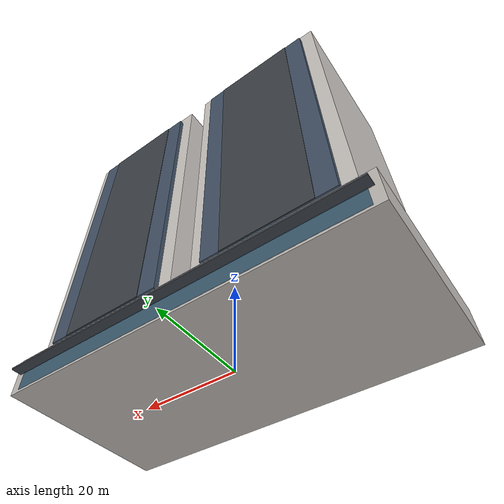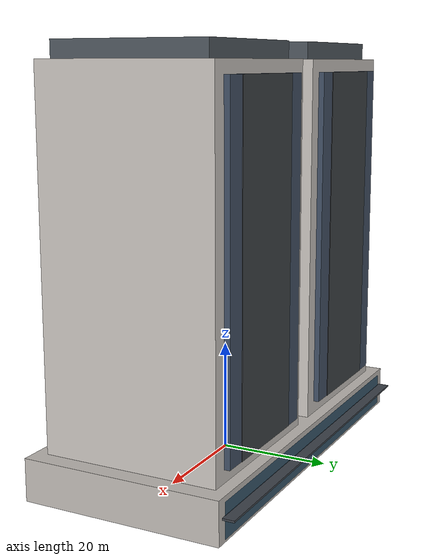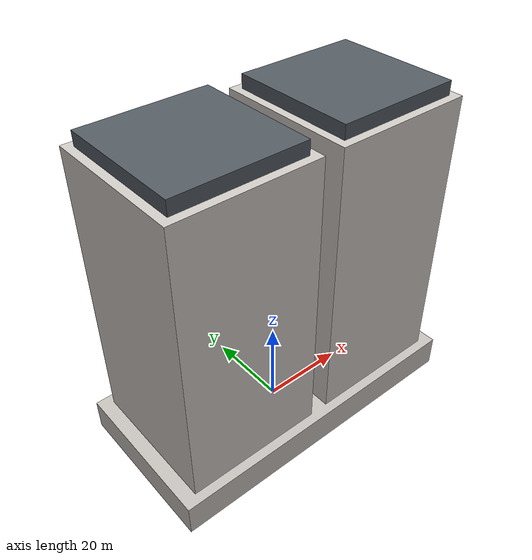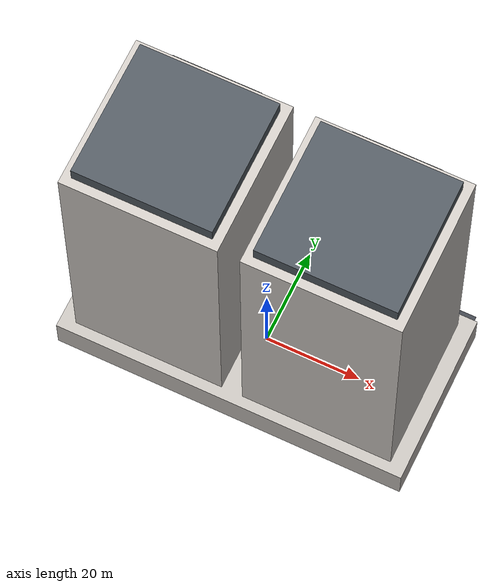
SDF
<?xml version="1.0" ?>
<sdf version="1.8">
  <model name="tokyo_roppongi_towers">
    <static>true</static>
    <link name="tower_link">

      <!-- ==================== 物理碰撞剛體 (低多邊形 Box，兼顧物理效能與阻擋) ==================== -->
      <!-- 1F~2F 挑高大理石基座碰撞剛體 -->
      <collision name="podium_col">
        <pose>0 0 3.75 0 0 0</pose>
        <geometry><box><size>74.0 36.0 7.5</size></box></geometry>
      </collision>

      <!-- 南塔主體 (Tower South: 24層樓, 高 72m) -->
      <collision name="tower_s_col">
        <pose>-18.0 0 36.0 0 0 0</pose>
        <geometry><box><size>32.0 32.0 72.0</size></box></geometry>
      </collision>

      <!-- 北塔主體 (Tower North: 24層樓, 高 72m) -->
      <collision name="tower_n_col">
        <pose>18.0 0 36.0 0 0 0</pose>
        <geometry><box><size>32.0 32.0 72.0</size></box></geometry>
      </collision>

      <!-- ==================== 視覺呈現：1F~2F 奢華大理石基座商鋪 (Marble Podium) ==================== -->
      <!-- 義大利卡拉拉白/深灰大理石基座外牆 -->
      <visual name="podium_vis">
        <pose>0 0 3.75 0 0 0</pose>
        <geometry><box><size>74.0 36.0 7.5</size></box></geometry>
        <material>
          <ambient>0.70 0.68 0.65 1</ambient>
          <diffuse>0.76 0.74 0.72 1</diffuse>
        </material>
      </visual>

      <!-- 1F 精品名店挑高落地玻璃櫥窗 (東向面向關新路) -->
      <visual name="podium_glass">
        <pose>0 18.05 3.5 0 0 0</pose>
        <geometry><box><size>70.0 0.1 6.0</size></box></geometry>
        <material>
          <ambient>0.15 0.25 0.35 0.85</ambient>
          <diffuse>0.20 0.35 0.45 0.85</diffuse>
          <specular>0.9 0.95 1.0 1</specular>
        </material>
      </visual>

      <!-- 迎賓雨遮與店面外挑造型飾板 (Storefront Canopies) -->
      <visual name="podium_canopy">
        <pose>0 19.0 4.2 0 0 0</pose>
        <geometry><box><size>72.0 2.2 0.35</size></box></geometry>
        <material><ambient>0.20 0.22 0.24 1</ambient><diffuse>0.25 0.27 0.30 1</diffuse></material>
      </visual>

      <!-- ==================== 視覺呈現：雙塔 24 層現代豪宅主體 (Twin Towers) ==================== -->
      <!-- 南塔主牆面 (深暖灰色氟碳烤漆飾板) -->
      <visual name="tower_s_main">
        <pose>-18.0 0 39.75 0 0 0</pose>
        <geometry><box><size>31.6 31.6 64.5</size></box></geometry>
        <material>
          <ambient>0.74 0.72 0.70 1</ambient>
          <diffuse>0.80 0.78 0.76 1</diffuse>
        </material>
      </visual>

      <!-- 北塔主牆面 -->
      <visual name="tower_n_main">
        <pose>18.0 0 39.75 0 0 0</pose>
        <geometry><box><size>31.6 31.6 64.5</size></box></geometry>
        <material>
          <ambient>0.74 0.72 0.70 1</ambient>
          <diffuse>0.80 0.78 0.76 1</diffuse>
        </material>
      </visual>

      <!-- ==================== 現代建築深凹景觀陽台與玻璃欄杆 (Recessed Balconies) ==================== -->
      <!-- 南塔東向景觀深凹陽台 -->
      <visual name="balconies_s_front">
        <pose>-18.0 16.2 39.75 0 0 0</pose>
        <geometry><box><size>26.0 1.2 60.0</size></box></geometry>
        <material>
          <ambient>0.22 0.28 0.35 0.9</ambient>
          <diffuse>0.26 0.32 0.40 0.9</diffuse>
        </material>
      </visual>

      <!-- 北塔東向景觀深凹陽台 -->
      <visual name="balconies_n_front">
        <pose>18.0 16.2 39.75 0 0 0</pose>
        <geometry><box><size>26.0 1.2 60.0</size></box></geometry>
        <material>
          <ambient>0.22 0.28 0.35 0.9</ambient>
          <diffuse>0.26 0.32 0.40 0.9</diffuse>
        </material>
      </visual>

      <!-- ==================== 標誌性垂直遮陽金屬格柵 (Vertical Sunshade Louvers) ==================== -->
      <!-- 南塔外立面金屬格柵 -->
      <visual name="louvers_s">
        <pose>-18.0 16.8 39.75 0 0 0</pose>
        <geometry><box><size>18.0 0.2 60.0</size></box></geometry>
        <material>
          <ambient>0.18 0.20 0.22 1</ambient>
          <diffuse>0.24 0.26 0.28 1</diffuse>
        </material>
      </visual>

      <!-- 北塔外立面金屬格柵 -->
      <visual name="louvers_n">
        <pose>18.0 16.8 39.75 0 0 0</pose>
        <geometry><box><size>18.0 0.2 60.0</size></box></geometry>
        <material>
          <ambient>0.18 0.20 0.22 1</ambient>
          <diffuse>0.24 0.26 0.28 1</diffuse>
        </material>
      </visual>

      <!-- ==================== 頂部天際線景觀造型冠頂框架 (Sky Crown Pergolas) ==================== -->
      <visual name="crown_s_vis">
        <pose>-18.0 0 73.5 0 0 0</pose>
        <geometry><box><size>28.0 28.0 3.0</size></box></geometry>
        <material>
          <ambient>0.25 0.27 0.30 1</ambient>
          <diffuse>0.32 0.35 0.38 1</diffuse>
        </material>
      </visual>

      <visual name="crown_n_vis">
        <pose>18.0 0 73.5 0 0 0</pose>
        <geometry><box><size>28.0 28.0 3.0</size></box></geometry>
        <material>
          <ambient>0.25 0.27 0.30 1</ambient>
          <diffuse>0.32 0.35 0.38 1</diffuse>
        </material>
      </visual>

    </link>
  </model>
</sdf>
